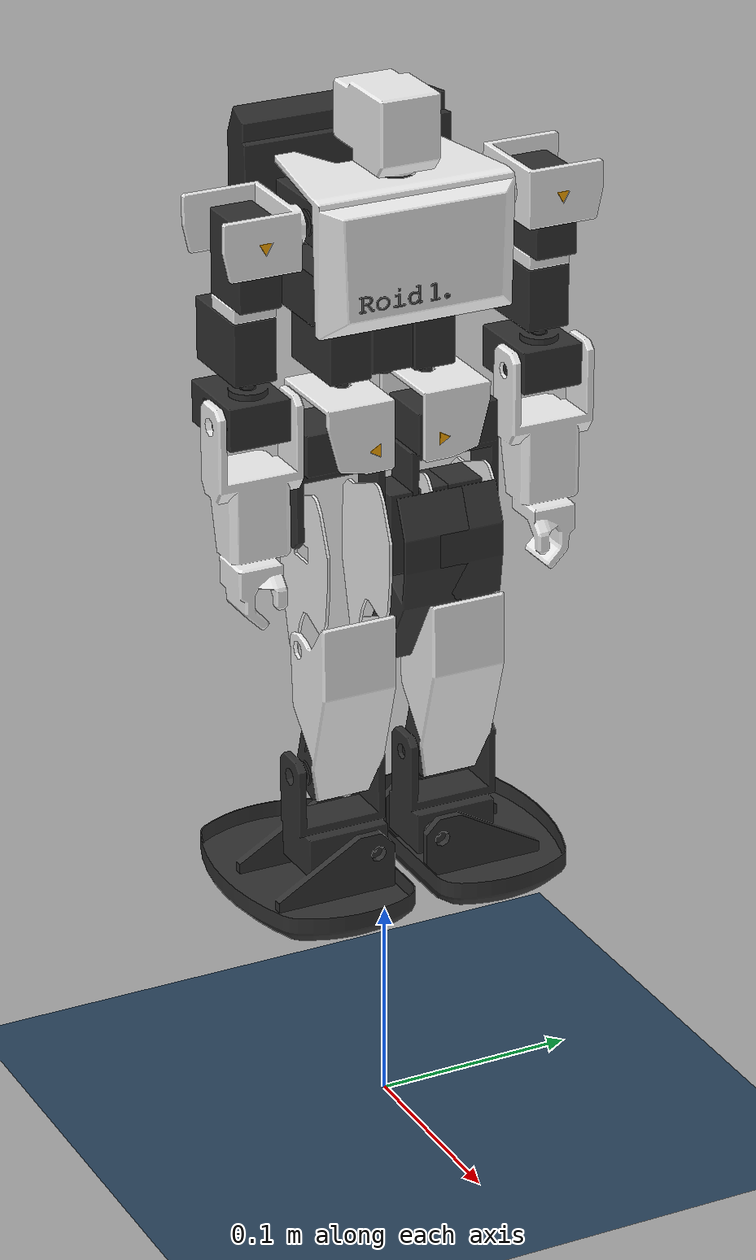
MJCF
<mujoco model="roborecipe_0 scene">
  <include file="roborecipe4_with_motors3.xml"/>

  <statistic center="1 -0.8 1.1" extent=".35"/>

  <visual>
    <headlight diffuse="0.6 0.6 0.6" ambient="0.1 0.1 0.1" specular="0.9 0.9 0.9"/>
    <rgba haze="0.15 0.25 0.35 1"/>
    <global azimuth="140" elevation="-20"/>
  </visual>

  <asset>
    <texture type="skybox" builtin="gradient" rgb1="0.3 0.5 0.7" rgb2="0 0 0" width="512" height="3072"/>
    <texture type="2d" name="groundplane" builtin="checker" mark="edge" rgb1="0.2 0.3 0.4" rgb2="0.1 0.2 0.3"
      markrgb="0.8 0.8 0.8" width="300" height="300"/>
    <material name="groundplane" texture="groundplane" texuniform="true" texrepeat="5 5" reflectance="0.2"/>
  </asset>

  <worldbody>
    <geom name="floor" size="0 0 0.05" type="plane" material="groundplane"/>
  </worldbody>
</mujoco>

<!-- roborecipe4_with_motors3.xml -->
<mujoco model="roborecipe1">
  <compiler angle="radian" meshdir="/home/hori/mujoco/urdf"/>

  <option integrator="implicitfast"/>

  <default>
    <default class="robo">
      <site rgba="1 0 0 1" size="0.01" group="5"/>
      <joint armature="0.01" frictionloss="0.3"/>
      <position kp="500" dampratio="1"/>
      <default class="visual">
        <geom group="2" type="mesh" contype="0" conaffinity="0" density="0" material="metal"/>
      </default>
      <default class="collision">
        <geom group="3" type="mesh"/>
        <default class="foot">
          <geom type="sphere" size="0.005" priority="1" friction="0.6" condim="3"/>
        </default>
      </default>
    </default>
  </default>

  <asset>
    <material name="black" rgba="0.2 0.2 0.2 1"/>
    <material name="metal" rgba="0.7 0.7 0.7 1"/>
    <material name="white" rgba="0.933 0.933 0.933 1"/>
    <material name="orange" rgba="1 0.667 0 1"/>
    <material name="dark_gray" rgba="0.184 0.184 0.184 1"/>
    <material name="gray" rgba="0.188 0.188 0.188 1"/>

    <mesh name="c_waist" file="c_waist.stl" />
    <mesh name="c_chest" file="c_chest.stl" />
    <mesh name="c_head" file="c_head.stl" />
    <mesh name="l_shoulder" file="l_shoulder.stl" />
    <mesh name="l_arm_upper" file="l_arm_upper.stl" />
    <mesh name="l_elbow" file="l_elbow.stl" />
    <mesh name="l_arm_lower" file="l_arm_lower.stl" />
    <mesh name="l_arm_upper_dec" file="l_arm_upper_dec.stl" />
    <mesh name="l_shoulder_dec1" file="l_shoulder_dec1.stl" />
    <mesh name="r_shoulder" file="r_shoulder.stl" />
    <mesh name="r_arm_upper" file="r_arm_upper.stl" />
    <mesh name="r_elbow" file="r_elbow.stl" />
    <mesh name="r_arm_lower" file="r_arm_lower.stl" />
    <mesh name="r_arm_upper_dec" file="r_arm_upper_dec.stl" />
    <mesh name="r_shoulder_dec1" file="r_shoulder_dec1.stl" />
    <mesh name="c_chest_dec1" file="c_chest_dec1.stl" />
    <mesh name="c_chest_dec2" file="c_chest_dec2.stl" />
    <mesh name="l_hipjoint_upper" file="l_hipjoint_upper.stl" />
    <mesh name="l_hipjoint_lower" file="l_hipjoint_lower.stl" />
    <mesh name="l_leg_upper" file="l_leg_upper.stl" />
    <mesh name="l_leg_lower" file="l_leg_lower.stl" />
    <mesh name="l_ankle" file="l_ankle.stl" />
    <mesh name="l_foot_large" file="l_foot_large.stl" />
    <mesh name="l_leg_lower_dec1" file="l_leg_lower_dec1.stl" />
    <mesh name="l_leg_upper_dec1" file="l_leg_upper_dec1.stl" />
    <mesh name="l_hipjoint_upper_dec1" file="l_hipjoint_upper_dec1.stl" />
    <mesh name="r_hipjoint_upper" file="r_hipjoint_upper.stl" />
    <mesh name="r_hipjoint_lower" file="r_hipjoint_lower.stl" />
    <mesh name="r_leg_upper" file="r_leg_upper.stl" />
    <mesh name="r_leg_lower" file="r_leg_lower.stl" />
    <mesh name="r_ankle" file="r_ankle.stl" />
    <mesh name="r_foot_large" file="r_foot_large.stl" />
    <mesh name="r_leg_lower_dec1" file="r_leg_lower_dec1.stl" />
    <mesh name="r_leg_upper_dec1" file="r_leg_upper_dec1.stl" />
    <mesh name="r_hipjoint_upper_dec1" file="r_hipjoint_upper_dec1.stl" />
  </asset>

  <worldbody>
    <light pos="1 0 3.5" dir="0 0 -1" directional="true"/>
    <!-- メインボディ -->
    <body name="pelvis" pos="0 0 0.40" childclass="robo">
      <inertial pos="0 0 0" quat="1 0 0 0" mass="3.813" diaginertia="0.010549 0.0093089 0.0079184"/>
      <freejoint name="floating_base_joint"/>
      <site name="imu_in_pelvis" pos="0 0 0" size="0.01"/>
      <geom class="visual" material="gray" mesh="c_waist" />
      <geom class="collision" mesh="c_waist" />

      <body name="c_chest" pos="0 0 0.02">
        <inertial pos="0 0 0" quat="-0.118801 0.647765 0.0252411 0.752097" mass="0.507983" diaginertia="0.00517547 0.00387936 0.00379816" />
        <joint name="c_chest" pos="0 0 0" axis="0 0 1" range="-3.14159 3.14159" />
        <geom class="visual" material="dark_gray" mesh="c_chest" />
        <geom class="collision" mesh="c_chest" />
        <geom class="visual" material="white" mesh="c_chest_dec1" />
        <geom class="visual" material="dark_gray" mesh="c_chest_dec2" />
        <site name="imu_in_torso" pos="0 0 0.05" size="0.01"/>

        <body name="c_head" pos="0.01145 0 0.0624">
          <inertial pos="0 0 0" quat="0.707107 0 0 0.707107" mass="0.013" diaginertia="2.9e-05 2.2e-05 2.2e-05" />
          <joint name="c_head" pos="0 0 0" axis="0 0 1" range="-3.14159 3.14159" />
          <geom class="visual" material="white" mesh="c_head" />
          <geom class="collision" mesh="c_head" />
        </body>

        <body name="l_shoulder" pos="0.01145 0.04885 0.0454">
          <inertial pos="0 0 0" quat="-0.0568167 0.70482 0.0568167 0.70482" mass="0.014" diaginertia="2.6e-05 2.21623e-05 1.58377e-05" />
          <joint name="l_shoulder_pitch" pos="0 0 0" axis="0 1 0" range="-3.14159 3.14159" />
          <geom class="visual" material="white" mesh="l_shoulder" />
          <geom class="collision" mesh="l_shoulder" />
          <geom class="visual" material="orange" mesh="l_shoulder_dec1" />

          <body name="l_arm_upper" pos="0.01976 0.0256 -2e-05">
            <inertial pos="0 0 0" quat="0.690218 0.126786 0.126002 0.701176" mass="0.098003" diaginertia="0.000322015 0.000261397 0.000112588" />
            <joint name="l_shoulder_roll" pos="0 0 0" axis="1 0 0" range="-3.14159 3.14159" />
            <geom class="visual" material="gray" mesh="l_arm_upper" />
            <geom class="collision" mesh="l_arm_upper" />
            <geom class="visual" material="white" mesh="l_arm_upper_dec" />

            <body name="l_elbow" pos="-0.02 0 -0.074">
              <inertial pos="0 0 0" quat="0.000341234 0.67919 -0.075338 0.730085" mass="0.044" diaginertia="6.22588e-05 5.10972e-05 3.3644e-05" />
              <joint name="l_elbow_yaw" pos="0 0 0" axis="0 0 1" range="-3.14159 3.14159" />
              <geom class="visual" material="gray" mesh="l_elbow" />
              <geom class="collision" mesh="l_elbow" />

              <body name="l_arm_lower" pos="0.0047 -0.019502 -0.0135">
                <inertial pos="0 0 0" quat="0.998283 0.0139569 -0.0205039 0.053062" mass="0.03" diaginertia="0.000105234 9.49445e-05 2.98213e-05" />
                <joint name="l_elbow_pitch" pos="0 0 0" axis="0 1 0" range="-3.14159 3.14159" />
                <geom class="visual" material="white" mesh="l_arm_lower" />
                <geom class="collision" mesh="l_arm_lower" />
              </body>
            </body>
          </body>
        </body>

        <body name="r_shoulder" pos="0.01145 -0.04885 0.0454">
          <inertial pos="0 0 0" quat="0.458208 0.538559 -0.458208 0.538559" mass="0.014" diaginertia="2.1e-05 1.61623e-05 9.83772e-06" />
          <joint name="r_shoulder_pitch" pos="0 0 0" axis="0 1 0" range="-3.14159 3.14159" />
          <geom class="visual" material="white" mesh="r_shoulder" />
          <geom class="collision" mesh="r_shoulder" />
          <geom class="visual" material="orange" mesh="r_shoulder_dec1" />

          <body name="r_arm_upper" pos="0.01976 -0.0256 -2e-05">
            <inertial pos="0 0 0" quat="0.695588 0.127111 0.127111 0.695588" mass="0.098003" diaginertia="9.8e-05 7.96716e-05 3.43284e-05" />
            <joint name="r_shoulder_roll" pos="0 0 0" axis="1 0 0" range="-3.14159 3.14159" />
            <geom class="visual" material="gray" mesh="r_arm_upper" />
            <geom class="collision" mesh="r_arm_upper" />
            <geom class="visual" material="white" mesh="r_arm_upper_dec" />

            <body name="r_elbow" pos="-0.02 0 -0.074">
              <inertial pos="0 0 0" quat="-0.0458566 0.659116 0.0826879 0.746073" mass="0.044" diaginertia="1.61281e-05 1.31807e-05 7.69128e-06" />
              <joint name="r_elbow_yaw" pos="0 0 0" axis="0 0 1" range="-3.14159 3.14159" />
              <geom class="visual" material="gray" mesh="r_elbow" />
              <geom class="collision" mesh="r_elbow" />

              <body name="r_arm_lower" pos="0.0047 0.019502 -0.0135">
                <inertial pos="0 0 0" quat="0.999517 0 -0.0310837 0" mass="0.03" diaginertia="2.30623e-05 2.1e-05 6.93774e-06" />
                <joint name="r_elbow_pitch" pos="0 0 0" axis="0 1 0" range="-3.14159 3.14159" />
                <geom class="visual" material="white" mesh="r_arm_lower" />
                <geom class="collision" mesh="r_arm_lower" />
              </body>
            </body>
          </body>
        </body>
      </body>

      <body name="l_hipjoint_upper" pos="0 0.02157 -0.02175">
        <inertial pos="0 0 0" quat="0.617602 0.344336 0.617602 0.344336" mass="0.0115" diaginertia="2.32361e-05 1.87639e-05 1.4e-05" />
        <joint name="l_hip_yaw" pos="0 0 0" axis="0 0 1" range="-3.14159 3.14159" />
        <geom class="visual" material="white" mesh="l_hipjoint_upper" />
        <geom class="collision" mesh="l_hipjoint_upper" />
        <geom class="visual" material="orange" mesh="l_hipjoint_upper_dec1" />

        <body name="l_hipjoint_lower" pos="0.02391 -0.00457 -0.02325">
          <inertial pos="0 0 0" quat="0.687649 0.725076 -0.0362929 -0.00935206" mass="0.058" diaginertia="0.000131233 0.000102012 8.47546e-05" />
          <joint name="l_hip_roll" pos="0 0 0" axis="1 0 0" range="-3.14159 3.14159" />
          <geom class="visual" material="gray" mesh="l_hipjoint_lower" />
          <geom class="collision" mesh="l_hipjoint_lower" />

          <body name="l_leg_upper" pos="-0.01977 -0.00825 -0.0385">
            <inertial pos="0 0 0" quat="0.716578 0.0546044 0.056685 0.693053" mass="0.091009" diaginertia="0.0199742 0.0171032 0.00722157" />
            <joint name="l_thigh_pitch" pos="0 0 0" axis="0 1 0" range="-3.14159 3.14159" />
            <geom class="visual" material="gray" mesh="l_leg_upper" />
            <geom class="collision" mesh="l_leg_upper" />
            <geom class="visual" material="white" mesh="l_leg_upper_dec1" />

            <body name="l_leg_lower" pos="6e-05 2.5e-05 -0.06502">
              <inertial pos="0 0 0" quat="0.998982 0.0416853 0.0163762 -0.0054041" mass="0.061014" diaginertia="0.0001601 0.0001395 6.74e-05" />
              <joint name="l_knee_pitch" pos="0 0 0" axis="0 1 0" range="-3.14159 3.14159" />
              <geom class="visual" material="gray" mesh="l_leg_lower" />
              <geom class="collision" mesh="l_leg_lower" />
              <geom class="visual" material="white" mesh="l_leg_lower_dec1" />

              <body name="l_ankle" pos="1e-05 2.7e-05 -0.0652">
                <inertial pos="0 0 0" quat="0.726153 0.686475 -0.00977331 -0.0368446" mass="0.058" diaginertia="0.000132238 0.000103015 8.67474e-05" />
                <joint name="l_ankle_pitch" pos="0 0 0" axis="0 1 0" range="-3.14159 3.14159" />
                <geom class="visual" material="dark_gray" mesh="l_ankle" />
                <geom class="collision" mesh="l_ankle" />

                <body name="l_foot_large" pos="0.0198 0.00825 -0.03845">
                  <inertial pos="0 0 0" quat="0.0149445 0.700092 0.0357518 0.713" mass="0.045" diaginertia="0.0302562 0.0228701 0.00989269" />
                  <joint name="l_ankle_roll" pos="0 0 0" axis="1 0 0" range="-3.14159 3.14159" />
                  <geom class="visual" material="gray" mesh="l_foot_large" />
                  <geom class="collision" mesh="l_foot_large" />
                  <geom class="foot" pos="-0.06 0.040 -0.03"/>
                  <geom class="foot" pos="-0.06 0.01 -0.03"/>
                  <geom class="foot" pos="0.01 0.040 -0.03"/>
                  <geom class="foot" pos="0.01 0.01 -0.03"/>
                  <site name="left_foot"/>
                </body>
              </body>
            </body>
          </body>
        </body>
      </body>

      <body name="r_hipjoint_upper" pos="0 -0.02157 -0.02175">
        <inertial pos="0 0 0" quat="0.438819 0.554471 0.438819 0.554471" mass="0.0115" diaginertia="1.92361e-05 1.47639e-05 1.3e-05" />
        <joint name="r_hip_yaw" pos="0 0 0" axis="0 0 1" range="-3.14159 3.14159" />
        <geom class="visual" material="white" mesh="r_hipjoint_upper" />
        <geom class="collision" mesh="r_hipjoint_upper" />
        <geom class="visual" material="orange" mesh="r_hipjoint_upper_dec1" />

        <body name="r_hipjoint_lower" pos="0.02391 0.00457 -0.02325">
          <inertial pos="0 0 0" quat="0.729426 0.68313 0.00218407 0.0355964" mass="0.058" diaginertia="0.000104156 8.10152e-05 6.68291e-05" />
          <joint name="r_hip_roll" pos="0 0 0" axis="1 0 0" range="-3.14159 3.14159" />
          <geom class="visual" material="gray" mesh="r_hipjoint_lower" />
          <geom class="collision" mesh="r_hipjoint_lower" />

          <body name="r_leg_upper" pos="-0.01977 0.00825 -0.0385">
            <inertial pos="0 0 0" quat="0.993886 -0.00601543 0.0846436 0.0706334" mass="0.091009" diaginertia="8.32132e-05 8.2e-05 4.07868e-05" />
            <joint name="r_thigh_pitch" pos="0 0 0" axis="0 1 0" range="-3.14159 3.14159" />
            <geom class="visual" material="gray" mesh="r_leg_upper" />
            <geom class="collision" mesh="r_leg_upper" />
            <geom class="visual" material="white" mesh="r_leg_upper_dec1" />

            <body name="r_leg_lower" pos="6e-05 -2.5e-05 -0.06502">
              <inertial pos="0 0 0" quat="0.998437 -0.0515597 0.020118 0.00783329" mass="0.061014" diaginertia="4.3041e-05 3.72064e-05 1.77526e-05" />
              <joint name="r_knee_pitch" pos="0 0 0" axis="0 1 0" range="-3.14159 3.14159" />
              <geom class="visual" material="gray" mesh="r_leg_lower" />
              <geom class="collision" mesh="r_leg_lower" />
              <geom class="visual" material="white" mesh="r_leg_lower_dec1" />

              <body name="r_ankle" pos="1e-05 -2.7e-05 -0.0652">
                <inertial pos="0 0 0" quat="0.709559 0.703186 0.0444071 -0.00913935" mass="0.058" diaginertia="5.81259e-05 4.49244e-05 3.79498e-05" />
                <joint name="r_ankle_pitch" pos="0 0 0" axis="0 1 0" range="-3.14159 3.14159" />
                <geom class="visual" material="dark_gray" mesh="r_ankle" />
                <geom class="collision" mesh="r_ankle" />

                <body name="r_foot_large" pos="0.0198 -0.00825 -0.03845">
                  <inertial pos="0 0 0" quat="-0.0899717 0.698451 0.0500229 0.708216" mass="0.045" diaginertia="0.000141181 9.10415e-05 5.97774e-05" />
                  <joint name="r_ankle_roll" pos="0 0 0" axis="1 0 0" range="-3.14159 3.14159" />
                  <geom class="visual" material="gray" mesh="r_foot_large" />
                  <geom class="collision" mesh="r_foot_large" />
                  <geom class="foot" pos="-0.06 -.001 -0.03"/>
                  <geom class="foot" pos="-0.06 -0.04 -0.03"/>
                  <geom class="foot" pos="0.01 -0.01 -0.03"/>
                  <geom class="foot" pos="0.01 -0.04 -0.03"/>
                  <site name="right_foot"/>
                </body>
              </body>
            </body>
          </body>
        </body>
      </body>
    </body>
  </worldbody>

  <actuator>
    <position class="robo" name="c_chest" joint="c_chest"/>
    <position class="robo" name="c_head" joint="c_head"/>
    <position class="robo" name="l_shoulder_pitch" joint="l_shoulder_pitch"/>
    <position class="robo" name="l_shoulder_roll" joint="l_shoulder_roll"/>
    <position class="robo" name="l_elbow_yaw" joint="l_elbow_yaw"/>
    <position class="robo" name="l_elbow_pitch" joint="l_elbow_pitch"/>
    <position class="robo" name="r_shoulder_pitch" joint="r_shoulder_pitch"/>
    <position class="robo" name="r_shoulder_roll" joint="r_shoulder_roll"/>
    <position class="robo" name="r_elbow_yaw" joint="r_elbow_yaw"/>
    <position class="robo" name="r_elbow_pitch" joint="r_elbow_pitch"/>
    <position class="robo" name="l_hip_yaw" joint="l_hip_yaw"/>
    <position class="robo" name="l_hip_roll" joint="l_hip_roll"/>
    <position class="robo" name="l_thigh_pitch" joint="l_thigh_pitch"/>
    <position class="robo" name="l_knee_pitch" joint="l_knee_pitch"/>
    <position class="robo" name="l_ankle_pitch" joint="l_ankle_pitch"/>
    <position class="robo" name="l_ankle_roll" joint="l_ankle_roll"/>
    <position class="robo" name="r_hip_yaw" joint="r_hip_yaw"/>
    <position class="robo" name="r_hip_roll" joint="r_hip_roll"/>
    <position class="robo" name="r_thigh_pitch" joint="r_thigh_pitch"/>
    <position class="robo" name="r_knee_pitch" joint="r_knee_pitch"/>
    <position class="robo" name="r_ankle_pitch" joint="r_ankle_pitch"/>
    <position class="robo" name="r_ankle_roll" joint="r_ankle_roll"/>
  </actuator>

  <sensor>
    <gyro site="imu_in_torso" name="imu-torso-angular-velocity" cutoff="34.9" noise="0.0005"/>
    <accelerometer site="imu_in_torso" name="imu-torso-linear-acceleration" cutoff="157" noise="0.01"/>
    <gyro site="imu_in_pelvis" name="imu-pelvis-angular-velocity" cutoff="34.9" noise="0.0005"/>
    <accelerometer site="imu_in_pelvis" name="imu-pelvis-linear-acceleration" cutoff="157" noise="0.01"/>
  </sensor>
</mujoco>
